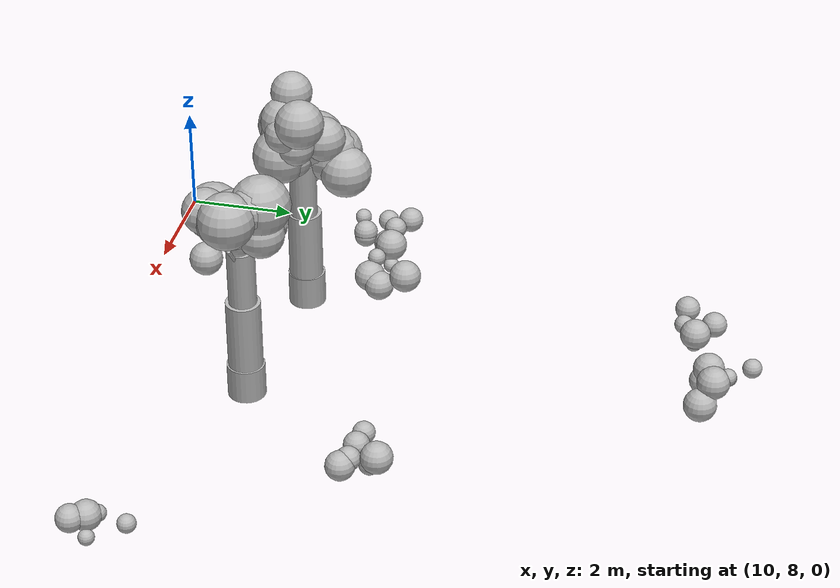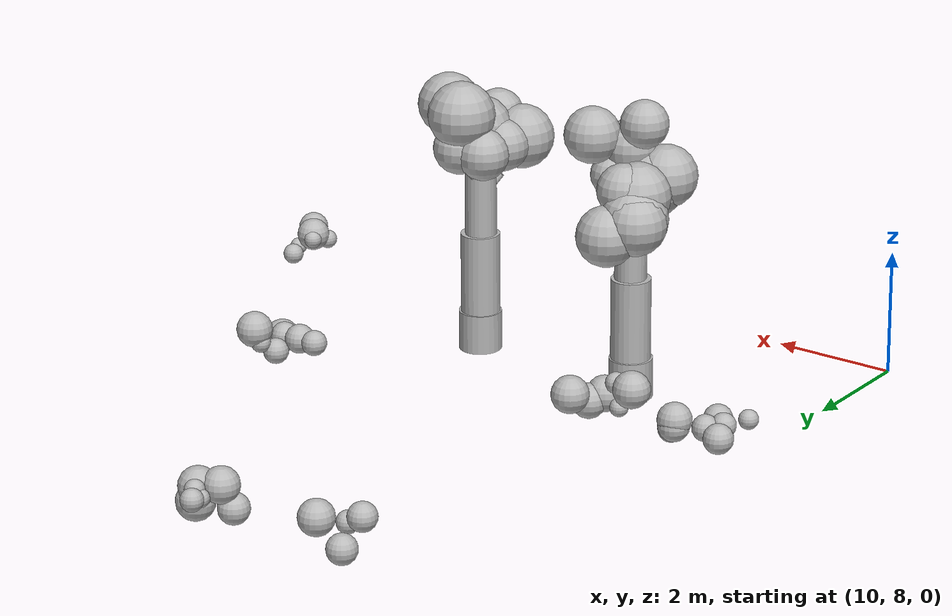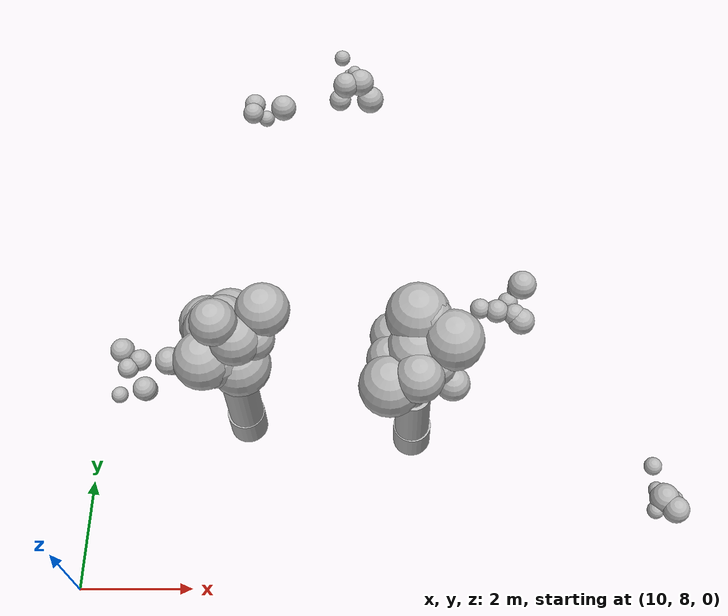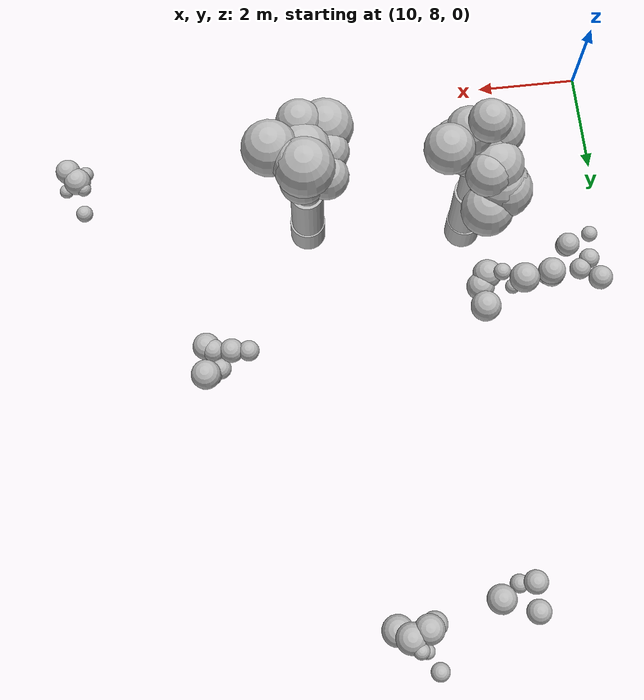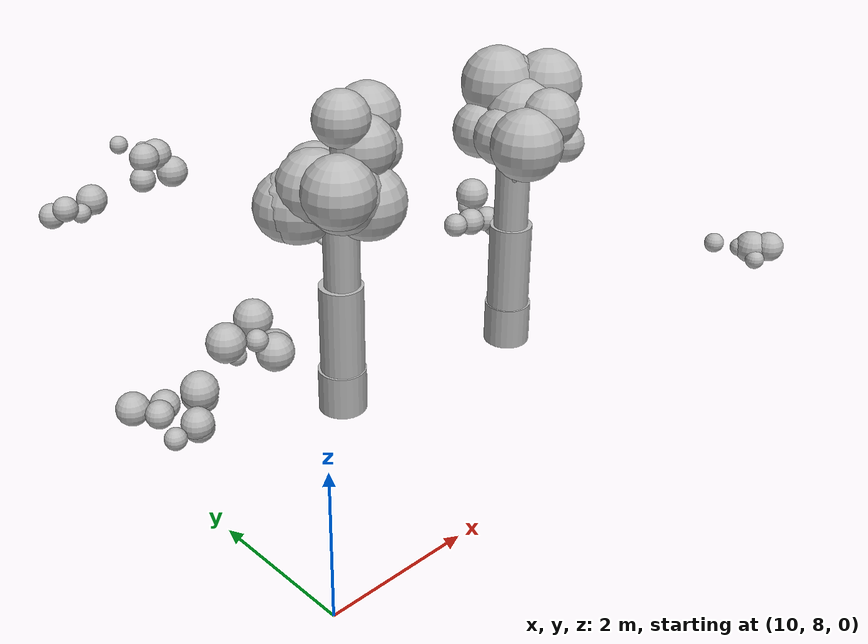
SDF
<sdf version="1.6">
 <world name="default">
  <model name="bush_16">
   <static>true</static>
   <pose>15.9041 10.8481 0 0 0 0</pose>
   <link name="trunk">
    <pose>0 0 1.5000 0 0 0</pose>
    <collision name="trunk_c">
     <geometry><cylinder><radius>0.3500</radius><length>3.0000</length></cylinder></geometry>
    </collision>
   </link>
   <link name="trunk_v0">
    <pose>-0.0012 -0.0003 0.3100 0 0 0</pose>
    <visual name="trunk_v0_v">
     <geometry><cylinder><radius>0.3448</radius><length>0.6448</length></cylinder></geometry>
     <material>
      <script>
       <uri>model://bushfire/materials/scripts</uri>
       <uri>model://bushfire/materials/textures</uri>
       <name>Bushfire/CharBark</name>
      </script>
     </material>
    </visual>
   </link>
   <link name="trunk_v1">
    <pose>-0.0083 -0.0020 1.2700 0 0 0</pose>
    <visual name="trunk_v1_v">
     <geometry><cylinder><radius>0.3150</radius><length>1.3520</length></cylinder></geometry>
     <material>
      <script>
       <uri>model://bushfire/materials/scripts</uri>
       <uri>model://bushfire/materials/textures</uri>
       <name>Bushfire/BarkStringy</name>
      </script>
     </material>
    </visual>
   </link>
   <link name="trunk_v2">
    <pose>-0.0209 -0.0050 2.4600 0 0 0</pose>
    <visual name="trunk_v2_v">
     <geometry><cylinder><radius>0.2520</radius><length>1.1232</length></cylinder></geometry>
     <material>
      <script>
       <uri>model://bushfire/materials/scripts</uri>
       <uri>model://bushfire/materials/textures</uri>
       <name>Bushfire/BarkStringy</name>
      </script>
     </material>
    </visual>
   </link>
   <link name="branch0">
    <pose>-0.1249 -0.1273 2.6929 0 0.6767 3.9365</pose>
    <visual name="branch0_v">
     <geometry><cylinder><radius>0.0453</radius><length>0.5696</length></cylinder></geometry>
     <material>
      <script>
       <uri>model://bushfire/materials/scripts</uri>
       <uri>model://bushfire/materials/textures</uri>
       <name>Bushfire/BarkStringy</name>
      </script>
     </material>
    </visual>
   </link>
   <link name="branch1">
    <pose>0.1879 -0.0394 2.9289 0 0.5676 6.0764</pose>
    <visual name="branch1_v">
     <geometry><cylinder><radius>0.0314</radius><length>0.7142</length></cylinder></geometry>
     <material>
      <script>
       <uri>model://bushfire/materials/scripts</uri>
       <uri>model://bushfire/materials/textures</uri>
       <name>Bushfire/BarkStringy</name>
      </script>
     </material>
    </visual>
   </link>
   <link name="branch2">
    <pose>-0.0336 0.2528 2.9792 0 0.8549 7.9863</pose>
    <visual name="branch2_v">
     <geometry><cylinder><radius>0.0408</radius><length>0.6761</length></cylinder></geometry>
     <material>
      <script>
       <uri>model://bushfire/materials/scripts</uri>
       <uri>model://bushfire/materials/textures</uri>
       <name>Bushfire/BarkStringy</name>
      </script>
     </material>
    </visual>
   </link>
   <link name="foliage0">
    <pose>-0.4191 -0.5780 3.4915 0 0 0</pose>
    <visual name="foliage0_v">
     <geometry><sphere><radius>0.5127</radius></sphere></geometry>
     <material>
      <script>
       <uri>model://bushfire/materials/scripts</uri>
       <uri>model://bushfire/materials/textures</uri>
       <name>Bushfire/Foliage0</name>
      </script>
     </material>
    </visual>
   </link>
   <link name="foliage1">
    <pose>0.3224 -0.3205 3.6843 0 0 0</pose>
    <visual name="foliage1_v">
     <geometry><sphere><radius>0.3221</radius></sphere></geometry>
     <material>
      <script>
       <uri>model://bushfire/materials/scripts</uri>
       <uri>model://bushfire/materials/textures</uri>
       <name>Bushfire/Foliage2</name>
      </script>
     </material>
    </visual>
   </link>
   <link name="foliage2">
    <pose>0.0349 0.4158 4.0235 0 0 0</pose>
    <visual name="foliage2_v">
     <geometry><sphere><radius>0.5341</radius></sphere></geometry>
     <material>
      <script>
       <uri>model://bushfire/materials/scripts</uri>
       <uri>model://bushfire/materials/textures</uri>
       <name>Bushfire/Foliage0</name>
      </script>
     </material>
    </visual>
   </link>
   <link name="foliage3">
    <pose>0.1288 0.1242 3.7370 0 0 0</pose>
    <visual name="foliage3_v">
     <geometry><sphere><radius>0.2526</radius></sphere></geometry>
     <material>
      <script>
       <uri>model://bushfire/materials/scripts</uri>
       <uri>model://bushfire/materials/textures</uri>
       <name>Bushfire/Foliage2</name>
      </script>
     </material>
    </visual>
   </link>
   <link name="foliage4">
    <pose>0.5929 -0.0247 3.9893 0 0 0</pose>
    <visual name="foliage4_v">
     <geometry><sphere><radius>0.5007</radius></sphere></geometry>
     <material>
      <script>
       <uri>model://bushfire/materials/scripts</uri>
       <uri>model://bushfire/materials/textures</uri>
       <name>Bushfire/Foliage1</name>
      </script>
     </material>
    </visual>
   </link>
   <link name="foliage5">
    <pose>-0.3402 0.3605 3.4294 0 0 0</pose>
    <visual name="foliage5_v">
     <geometry><sphere><radius>0.4108</radius></sphere></geometry>
     <material>
      <script>
       <uri>model://bushfire/materials/scripts</uri>
       <uri>model://bushfire/materials/textures</uri>
       <name>Bushfire/Foliage1</name>
      </script>
     </material>
    </visual>
   </link>
   <link name="foliage6">
    <pose>0.0393 -0.5753 3.7708 0 0 0</pose>
    <visual name="foliage6_v">
     <geometry><sphere><radius>0.4127</radius></sphere></geometry>
     <material>
      <script>
       <uri>model://bushfire/materials/scripts</uri>
       <uri>model://bushfire/materials/textures</uri>
       <name>Bushfire/Foliage1</name>
      </script>
     </material>
    </visual>
   </link>
   <link name="foliage7">
    <pose>0.6068 -0.4082 3.1958 0 0 0</pose>
    <visual name="foliage7_v">
     <geometry><sphere><radius>0.2864</radius></sphere></geometry>
     <material>
      <script>
       <uri>model://bushfire/materials/scripts</uri>
       <uri>model://bushfire/materials/textures</uri>
       <name>Bushfire/Foliage1</name>
      </script>
     </material>
    </visual>
   </link>
   <link name="foliage8">
    <pose>0.1576 0.3389 4.0370 0 0 0</pose>
    <visual name="foliage8_v">
     <geometry><sphere><radius>0.4394</radius></sphere></geometry>
     <material>
      <script>
       <uri>model://bushfire/materials/scripts</uri>
       <uri>model://bushfire/materials/textures</uri>
       <name>Bushfire/Foliage0</name>
      </script>
     </material>
    </visual>
   </link>
   <link name="foliage9">
    <pose>-0.3943 -0.1019 3.4698 0 0 0</pose>
    <visual name="foliage9_v">
     <geometry><sphere><radius>0.4125</radius></sphere></geometry>
     <material>
      <script>
       <uri>model://bushfire/materials/scripts</uri>
       <uri>model://bushfire/materials/textures</uri>
       <name>Bushfire/Foliage0</name>
      </script>
     </material>
    </visual>
   </link>
   <link name="foliage10">
    <pose>0.0330 -0.0588 3.6811 0 0 0</pose>
    <visual name="foliage10_v">
     <geometry><sphere><radius>0.5246</radius></sphere></geometry>
     <material>
      <script>
       <uri>model://bushfire/materials/scripts</uri>
       <uri>model://bushfire/materials/textures</uri>
       <name>Bushfire/Foliage2</name>
      </script>
     </material>
    </visual>
   </link>
   <link name="foliage11">
    <pose>0.0771 0.4121 3.4742 0 0 0</pose>
    <visual name="foliage11_v">
     <geometry><sphere><radius>0.4202</radius></sphere></geometry>
     <material>
      <script>
       <uri>model://bushfire/materials/scripts</uri>
       <uri>model://bushfire/materials/textures</uri>
       <name>Bushfire/Foliage1</name>
      </script>
     </material>
    </visual>
   </link>
   <link name="foliage12">
    <pose>0.0206 -0.0276 3.2971 0 0 0</pose>
    <visual name="foliage12_v">
     <geometry><sphere><radius>0.3258</radius></sphere></geometry>
     <material>
      <script>
       <uri>model://bushfire/materials/scripts</uri>
       <uri>model://bushfire/materials/textures</uri>
       <name>Bushfire/Foliage2</name>
      </script>
     </material>
    </visual>
   </link>
  </model>
  <model name="bush_33">
   <static>true</static>
   <pose>12.8076 11.1305 0 0 0 0</pose>
   <link name="trunk">
    <pose>0 0 1.5000 0 0 0</pose>
    <collision name="trunk_c">
     <geometry><cylinder><radius>0.3500</radius><length>3.0000</length></cylinder></geometry>
    </collision>
   </link>
   <link name="trunk_v0">
    <pose>0.0016 -0.0007 0.3100 0 0 0</pose>
    <visual name="trunk_v0_v">
     <geometry><cylinder><radius>0.3448</radius><length>0.6448</length></cylinder></geometry>
     <material>
      <script>
       <uri>model://bushfire/materials/scripts</uri>
       <uri>model://bushfire/materials/textures</uri>
       <name>Bushfire/CharBark</name>
      </script>
     </material>
    </visual>
   </link>
   <link name="trunk_v1">
    <pose>0.0116 -0.0050 1.2700 0 0 0</pose>
    <visual name="trunk_v1_v">
     <geometry><cylinder><radius>0.3150</radius><length>1.3520</length></cylinder></geometry>
     <material>
      <script>
       <uri>model://bushfire/materials/scripts</uri>
       <uri>model://bushfire/materials/textures</uri>
       <name>Bushfire/BarkSmooth</name>
      </script>
     </material>
    </visual>
   </link>
   <link name="trunk_v2">
    <pose>0.0293 -0.0125 2.4600 0 0 0</pose>
    <visual name="trunk_v2_v">
     <geometry><cylinder><radius>0.2520</radius><length>1.1232</length></cylinder></geometry>
     <material>
      <script>
       <uri>model://bushfire/materials/scripts</uri>
       <uri>model://bushfire/materials/textures</uri>
       <name>Bushfire/BarkSmooth</name>
      </script>
     </material>
    </visual>
   </link>
   <link name="branch0">
    <pose>0.2122 -0.0411 2.9763 0 0.6023 -0.1913</pose>
    <visual name="branch0_v">
     <geometry><cylinder><radius>0.0308</radius><length>0.7629</length></cylinder></geometry>
     <material>
      <script>
       <uri>model://bushfire/materials/scripts</uri>
       <uri>model://bushfire/materials/textures</uri>
       <name>Bushfire/BarkSmooth</name>
      </script>
     </material>
    </visual>
   </link>
   <link name="branch1">
    <pose>-0.2166 0.2785 2.6711 0 0.9761 2.2318</pose>
    <visual name="branch1_v">
     <geometry><cylinder><radius>0.0422</radius><length>0.8520</length></cylinder></geometry>
     <material>
      <script>
       <uri>model://bushfire/materials/scripts</uri>
       <uri>model://bushfire/materials/textures</uri>
       <name>Bushfire/BarkSmooth</name>
      </script>
     </material>
    </visual>
   </link>
   <link name="branch2">
    <pose>-0.0716 -0.2456 3.1943 0 0.6297 4.4289</pose>
    <visual name="branch2_v">
     <geometry><cylinder><radius>0.0375</radius><length>0.8687</length></cylinder></geometry>
     <material>
      <script>
       <uri>model://bushfire/materials/scripts</uri>
       <uri>model://bushfire/materials/textures</uri>
       <name>Bushfire/BarkSmooth</name>
      </script>
     </material>
    </visual>
   </link>
   <link name="foliage0">
    <pose>0.6467 0.1362 4.1906 0 0 0</pose>
    <visual name="foliage0_v">
     <geometry><sphere><radius>0.4447</radius></sphere></geometry>
     <material>
      <script>
       <uri>model://bushfire/materials/scripts</uri>
       <uri>model://bushfire/materials/textures</uri>
       <name>Bushfire/Foliage0</name>
      </script>
     </material>
    </visual>
   </link>
   <link name="foliage1">
    <pose>-0.0606 0.7836 2.8864 0 0 0</pose>
    <visual name="foliage1_v">
     <geometry><sphere><radius>0.4763</radius></sphere></geometry>
     <material>
      <script>
       <uri>model://bushfire/materials/scripts</uri>
       <uri>model://bushfire/materials/textures</uri>
       <name>Bushfire/Foliage2</name>
      </script>
     </material>
    </visual>
   </link>
   <link name="foliage2">
    <pose>0.0535 -0.2976 3.9201 0 0 0</pose>
    <visual name="foliage2_v">
     <geometry><sphere><radius>0.2650</radius></sphere></geometry>
     <material>
      <script>
       <uri>model://bushfire/materials/scripts</uri>
       <uri>model://bushfire/materials/textures</uri>
       <name>Bushfire/Foliage0</name>
      </script>
     </material>
    </visual>
   </link>
   <link name="foliage3">
    <pose>0.3851 -0.0272 3.5577 0 0 0</pose>
    <visual name="foliage3_v">
     <geometry><sphere><radius>0.3434</radius></sphere></geometry>
     <material>
      <script>
       <uri>model://bushfire/materials/scripts</uri>
       <uri>model://bushfire/materials/textures</uri>
       <name>Bushfire/Foliage2</name>
      </script>
     </material>
    </visual>
   </link>
   <link name="foliage4">
    <pose>-0.0837 0.3548 3.5019 0 0 0</pose>
    <visual name="foliage4_v">
     <geometry><sphere><radius>0.4219</radius></sphere></geometry>
     <material>
      <script>
       <uri>model://bushfire/materials/scripts</uri>
       <uri>model://bushfire/materials/textures</uri>
       <name>Bushfire/Foliage2</name>
      </script>
     </material>
    </visual>
   </link>
   <link name="foliage5">
    <pose>-0.1565 -0.2932 3.4358 0 0 0</pose>
    <visual name="foliage5_v">
     <geometry><sphere><radius>0.5301</radius></sphere></geometry>
     <material>
      <script>
       <uri>model://bushfire/materials/scripts</uri>
       <uri>model://bushfire/materials/textures</uri>
       <name>Bushfire/Foliage0</name>
      </script>
     </material>
    </visual>
   </link>
   <link name="foliage6">
    <pose>0.4970 -0.2114 3.8627 0 0 0</pose>
    <visual name="foliage6_v">
     <geometry><sphere><radius>0.3421</radius></sphere></geometry>
     <material>
      <script>
       <uri>model://bushfire/materials/scripts</uri>
       <uri>model://bushfire/materials/textures</uri>
       <name>Bushfire/Foliage1</name>
      </script>
     </material>
    </visual>
   </link>
   <link name="foliage7">
    <pose>-0.2319 0.1926 3.4071 0 0 0</pose>
    <visual name="foliage7_v">
     <geometry><sphere><radius>0.5192</radius></sphere></geometry>
     <material>
      <script>
       <uri>model://bushfire/materials/scripts</uri>
       <uri>model://bushfire/materials/textures</uri>
       <name>Bushfire/Foliage2</name>
      </script>
     </material>
    </visual>
   </link>
   <link name="foliage8">
    <pose>0.2150 -0.2684 3.9786 0 0 0</pose>
    <visual name="foliage8_v">
     <geometry><sphere><radius>0.4330</radius></sphere></geometry>
     <material>
      <script>
       <uri>model://bushfire/materials/scripts</uri>
       <uri>model://bushfire/materials/textures</uri>
       <name>Bushfire/Foliage2</name>
      </script>
     </material>
    </visual>
   </link>
   <link name="foliage9">
    <pose>0.2162 -0.3615 3.2357 0 0 0</pose>
    <visual name="foliage9_v">
     <geometry><sphere><radius>0.5160</radius></sphere></geometry>
     <material>
      <script>
       <uri>model://bushfire/materials/scripts</uri>
       <uri>model://bushfire/materials/textures</uri>
       <name>Bushfire/Foliage1</name>
      </script>
     </material>
    </visual>
   </link>
   <link name="foliage10">
    <pose>-0.4046 0.5132 3.0728 0 0 0</pose>
    <visual name="foliage10_v">
     <geometry><sphere><radius>0.4936</radius></sphere></geometry>
     <material>
      <script>
       <uri>model://bushfire/materials/scripts</uri>
       <uri>model://bushfire/materials/textures</uri>
       <name>Bushfire/Foliage1</name>
      </script>
     </material>
    </visual>
   </link>
   <link name="foliage11">
    <pose>-0.0805 -0.2034 4.4099 0 0 0</pose>
    <visual name="foliage11_v">
     <geometry><sphere><radius>0.3801</radius></sphere></geometry>
     <material>
      <script>
       <uri>model://bushfire/materials/scripts</uri>
       <uri>model://bushfire/materials/textures</uri>
       <name>Bushfire/Foliage1</name>
      </script>
     </material>
    </visual>
   </link>
   <link name="foliage12">
    <pose>0.1923 -0.1197 3.1760 0 0 0</pose>
    <visual name="foliage12_v">
     <geometry><sphere><radius>0.3317</radius></sphere></geometry>
     <material>
      <script>
       <uri>model://bushfire/materials/scripts</uri>
       <uri>model://bushfire/materials/textures</uri>
       <name>Bushfire/Foliage0</name>
      </script>
     </material>
    </visual>
   </link>
   <link name="foliage13">
    <pose>-0.3187 0.4293 3.0980 0 0 0</pose>
    <visual name="foliage13_v">
     <geometry><sphere><radius>0.5395</radius></sphere></geometry>
     <material>
      <script>
       <uri>model://bushfire/materials/scripts</uri>
       <uri>model://bushfire/materials/textures</uri>
       <name>Bushfire/Foliage0</name>
      </script>
     </material>
    </visual>
   </link>
   <link name="foliage14">
    <pose>-0.3366 -0.4277 3.5621 0 0 0</pose>
    <visual name="foliage14_v">
     <geometry><sphere><radius>0.4949</radius></sphere></geometry>
     <material>
      <script>
       <uri>model://bushfire/materials/scripts</uri>
       <uri>model://bushfire/materials/textures</uri>
       <name>Bushfire/Foliage0</name>
      </script>
     </material>
    </visual>
   </link>
   <link name="foliage15">
    <pose>-0.0672 -0.1736 3.2710 0 0 0</pose>
    <visual name="foliage15_v">
     <geometry><sphere><radius>0.3172</radius></sphere></geometry>
     <material>
      <script>
       <uri>model://bushfire/materials/scripts</uri>
       <uri>model://bushfire/materials/textures</uri>
       <name>Bushfire/Foliage0</name>
      </script>
     </material>
    </visual>
   </link>
  </model>
  <model name="scrub">
   <static>true</static>
   <link name="scrub13_0">
    <pose>14.7519 19.2999 0.8821 0 0 0</pose>
    <visual name="scrub13_0_v">
     <geometry><sphere><radius>0.1552</radius></sphere></geometry>
     <material>
      <script>
       <uri>model://bushfire/materials/scripts</uri>
       <uri>model://bushfire/materials/textures</uri>
       <name>Bushfire/Foliage0</name>
      </script>
     </material>
    </visual>
   </link>
   <link name="scrub13_1">
    <pose>14.8884 19.0658 0.8218 0 0 0</pose>
    <visual name="scrub13_1_v">
     <geometry><sphere><radius>0.2961</radius></sphere></geometry>
     <material>
      <script>
       <uri>model://bushfire/materials/scripts</uri>
       <uri>model://bushfire/materials/textures</uri>
       <name>Bushfire/Foliage2</name>
      </script>
     </material>
    </visual>
   </link>
   <link name="scrub13_2">
    <pose>14.5600 18.9433 0.8739 0 0 0</pose>
    <visual name="scrub13_2_v">
     <geometry><sphere><radius>0.2804</radius></sphere></geometry>
     <material>
      <script>
       <uri>model://bushfire/materials/scripts</uri>
       <uri>model://bushfire/materials/textures</uri>
       <name>Bushfire/Foliage1</name>
      </script>
     </material>
    </visual>
   </link>
   <link name="scrub13_3">
    <pose>15.0992 18.8828 0.4626 0 0 0</pose>
    <visual name="scrub13_3_v">
     <geometry><sphere><radius>0.2990</radius></sphere></geometry>
     <material>
      <script>
       <uri>model://bushfire/materials/scripts</uri>
       <uri>model://bushfire/materials/textures</uri>
       <name>Bushfire/Foliage1</name>
      </script>
     </material>
    </visual>
   </link>
   <link name="scrub13_4">
    <pose>14.4725 19.6923 0.9381 0 0 0</pose>
    <visual name="scrub13_4_v">
     <geometry><sphere><radius>0.1735</radius></sphere></geometry>
     <material>
      <script>
       <uri>model://bushfire/materials/scripts</uri>
       <uri>model://bushfire/materials/textures</uri>
       <name>Bushfire/Foliage1</name>
      </script>
     </material>
    </visual>
   </link>
   <link name="scrub13_5">
    <pose>14.4252 18.8412 0.5039 0 0 0</pose>
    <visual name="scrub13_5_v">
     <geometry><sphere><radius>0.2425</radius></sphere></geometry>
     <material>
      <script>
       <uri>model://bushfire/materials/scripts</uri>
       <uri>model://bushfire/materials/textures</uri>
       <name>Bushfire/Foliage0</name>
      </script>
     </material>
    </visual>
   </link>
   <link name="scrub13_6">
    <pose>14.6429 19.3141 0.7820 0 0 0</pose>
    <visual name="scrub13_6_v">
     <geometry><sphere><radius>0.1426</radius></sphere></geometry>
     <material>
      <script>
       <uri>model://bushfire/materials/scripts</uri>
       <uri>model://bushfire/materials/textures</uri>
       <name>Bushfire/Foliage1</name>
      </script>
     </material>
    </visual>
   </link>
   <link name="scrub19_0">
    <pose>10.8031 11.7716 0.2421 0 0 0</pose>
    <visual name="scrub19_0_v">
     <geometry><sphere><radius>0.2172</radius></sphere></geometry>
     <material>
      <script>
       <uri>model://bushfire/materials/scripts</uri>
       <uri>model://bushfire/materials/textures</uri>
       <name>Bushfire/Foliage0</name>
      </script>
     </material>
    </visual>
   </link>
   <link name="scrub19_1">
    <pose>11.2579 12.3290 0.2273 0 0 0</pose>
    <visual name="scrub19_1_v">
     <geometry><sphere><radius>0.2107</radius></sphere></geometry>
     <material>
      <script>
       <uri>model://bushfire/materials/scripts</uri>
       <uri>model://bushfire/materials/textures</uri>
       <name>Bushfire/Foliage0</name>
      </script>
     </material>
    </visual>
   </link>
   <link name="scrub19_2">
    <pose>10.6428 12.3370 0.3948 0 0 0</pose>
    <visual name="scrub19_2_v">
     <geometry><sphere><radius>0.2106</radius></sphere></geometry>
     <material>
      <script>
       <uri>model://bushfire/materials/scripts</uri>
       <uri>model://bushfire/materials/textures</uri>
       <name>Bushfire/Foliage2</name>
      </script>
     </material>
    </visual>
   </link>
   <link name="scrub19_3">
    <pose>11.1971 12.3562 0.2994 0 0 0</pose>
    <visual name="scrub19_3_v">
     <geometry><sphere><radius>0.2482</radius></sphere></geometry>
     <material>
      <script>
       <uri>model://bushfire/materials/scripts</uri>
       <uri>model://bushfire/materials/textures</uri>
       <name>Bushfire/Foliage1</name>
      </script>
     </material>
    </visual>
   </link>
   <link name="scrub19_4">
    <pose>10.3324 11.6126 0.3571 0 0 0</pose>
    <visual name="scrub19_4_v">
     <geometry><sphere><radius>0.1571</radius></sphere></geometry>
     <material>
      <script>
       <uri>model://bushfire/materials/scripts</uri>
       <uri>model://bushfire/materials/textures</uri>
       <name>Bushfire/Foliage2</name>
      </script>
     </material>
    </visual>
   </link>
   <link name="scrub19_5">
    <pose>10.4398 12.1510 0.4217 0 0 0</pose>
    <visual name="scrub19_5_v">
     <geometry><sphere><radius>0.1987</radius></sphere></geometry>
     <material>
      <script>
       <uri>model://bushfire/materials/scripts</uri>
       <uri>model://bushfire/materials/textures</uri>
       <name>Bushfire/Foliage1</name>
      </script>
     </material>
    </visual>
   </link>
   <link name="scrub19_6">
    <pose>10.2712 12.5586 0.3869 0 0 0</pose>
    <visual name="scrub19_6_v">
     <geometry><sphere><radius>0.2368</radius></sphere></geometry>
     <material>
      <script>
       <uri>model://bushfire/materials/scripts</uri>
       <uri>model://bushfire/materials/textures</uri>
       <name>Bushfire/Foliage0</name>
      </script>
     </material>
    </visual>
   </link>
   <link name="scrub19_7">
    <pose>11.2046 12.3240 0.3874 0 0 0</pose>
    <visual name="scrub19_7_v">
     <geometry><sphere><radius>0.2726</radius></sphere></geometry>
     <material>
      <script>
       <uri>model://bushfire/materials/scripts</uri>
       <uri>model://bushfire/materials/textures</uri>
       <name>Bushfire/Foliage0</name>
      </script>
     </material>
    </visual>
   </link>
   <link name="scrub19_8">
    <pose>10.7809 11.7674 0.3125 0 0 0</pose>
    <visual name="scrub19_8_v">
     <geometry><sphere><radius>0.2301</radius></sphere></geometry>
     <material>
      <script>
       <uri>model://bushfire/materials/scripts</uri>
       <uri>model://bushfire/materials/textures</uri>
       <name>Bushfire/Foliage1</name>
      </script>
     </material>
    </visual>
   </link>
   <link name="scrub24_0">
    <pose>17.8756 13.6157 0.3749 0 0 0</pose>
    <visual name="scrub24_0_v">
     <geometry><sphere><radius>0.2052</radius></sphere></geometry>
     <material>
      <script>
       <uri>model://bushfire/materials/scripts</uri>
       <uri>model://bushfire/materials/textures</uri>
       <name>Bushfire/Foliage2</name>
      </script>
     </material>
    </visual>
   </link>
   <link name="scrub24_1">
    <pose>17.3009 13.3682 0.5589 0 0 0</pose>
    <visual name="scrub24_1_v">
     <geometry><sphere><radius>0.2024</radius></sphere></geometry>
     <material>
      <script>
       <uri>model://bushfire/materials/scripts</uri>
       <uri>model://bushfire/materials/textures</uri>
       <name>Bushfire/Foliage2</name>
      </script>
     </material>
    </visual>
   </link>
   <link name="scrub24_2">
    <pose>18.1450 13.8035 0.7405 0 0 0</pose>
    <visual name="scrub24_2_v">
     <geometry><sphere><radius>0.2861</radius></sphere></geometry>
     <material>
      <script>
       <uri>model://bushfire/materials/scripts</uri>
       <uri>model://bushfire/materials/textures</uri>
       <name>Bushfire/Foliage1</name>
      </script>
     </material>
    </visual>
   </link>
   <link name="scrub24_3">
    <pose>17.9800 13.2653 0.4987 0 0 0</pose>
    <visual name="scrub24_3_v">
     <geometry><sphere><radius>0.2197</radius></sphere></geometry>
     <material>
      <script>
       <uri>model://bushfire/materials/scripts</uri>
       <uri>model://bushfire/materials/textures</uri>
       <name>Bushfire/Foliage1</name>
      </script>
     </material>
    </visual>
   </link>
   <link name="scrub24_4">
    <pose>18.0202 13.8131 0.5455 0 0 0</pose>
    <visual name="scrub24_4_v">
     <geometry><sphere><radius>0.1575</radius></sphere></geometry>
     <material>
      <script>
       <uri>model://bushfire/materials/scripts</uri>
       <uri>model://bushfire/materials/textures</uri>
       <name>Bushfire/Foliage2</name>
      </script>
     </material>
    </visual>
   </link>
   <link name="scrub24_5">
    <pose>17.6295 13.3218 0.5413 0 0 0</pose>
    <visual name="scrub24_5_v">
     <geometry><sphere><radius>0.2344</radius></sphere></geometry>
     <material>
      <script>
       <uri>model://bushfire/materials/scripts</uri>
       <uri>model://bushfire/materials/textures</uri>
       <name>Bushfire/Foliage2</name>
      </script>
     </material>
    </visual>
   </link>
   <link name="scrub24_6">
    <pose>18.1169 13.1527 0.4307 0 0 0</pose>
    <visual name="scrub24_6_v">
     <geometry><sphere><radius>0.2657</radius></sphere></geometry>
     <material>
      <script>
       <uri>model://bushfire/materials/scripts</uri>
       <uri>model://bushfire/materials/textures</uri>
       <name>Bushfire/Foliage2</name>
      </script>
     </material>
    </visual>
   </link>
   <link name="scrub45_0">
    <pose>20.5891 9.2266 0.5564 0 0 0</pose>
    <visual name="scrub45_0_v">
     <geometry><sphere><radius>0.2438</radius></sphere></geometry>
     <material>
      <script>
       <uri>model://bushfire/materials/scripts</uri>
       <uri>model://bushfire/materials/textures</uri>
       <name>Bushfire/Foliage1</name>
      </script>
     </material>
    </visual>
   </link>
   <link name="scrub45_1">
    <pose>20.4185 9.4505 0.5262 0 0 0</pose>
    <visual name="scrub45_1_v">
     <geometry><sphere><radius>0.2674</radius></sphere></geometry>
     <material>
      <script>
       <uri>model://bushfire/materials/scripts</uri>
       <uri>model://bushfire/materials/textures</uri>
       <name>Bushfire/Foliage0</name>
      </script>
     </material>
    </visual>
   </link>
   <link name="scrub45_2">
    <pose>20.2605 9.2620 0.4153 0 0 0</pose>
    <visual name="scrub45_2_v">
     <geometry><sphere><radius>0.1550</radius></sphere></geometry>
     <material>
      <script>
       <uri>model://bushfire/materials/scripts</uri>
       <uri>model://bushfire/materials/textures</uri>
       <name>Bushfire/Foliage1</name>
      </script>
     </material>
    </visual>
   </link>
   <link name="scrub45_3">
    <pose>20.3283 10.1083 0.3949 0 0 0</pose>
    <visual name="scrub45_3_v">
     <geometry><sphere><radius>0.1658</radius></sphere></geometry>
     <material>
      <script>
       <uri>model://bushfire/materials/scripts</uri>
       <uri>model://bushfire/materials/textures</uri>
       <name>Bushfire/Foliage2</name>
      </script>
     </material>
    </visual>
   </link>
   <link name="scrub45_4">
    <pose>20.3035 9.6108 0.5049 0 0 0</pose>
    <visual name="scrub45_4_v">
     <geometry><sphere><radius>0.1490</radius></sphere></geometry>
     <material>
      <script>
       <uri>model://bushfire/materials/scripts</uri>
       <uri>model://bushfire/materials/textures</uri>
       <name>Bushfire/Foliage2</name>
      </script>
     </material>
    </visual>
   </link>
   <link name="scrub45_5">
    <pose>20.6807 9.5254 0.2806 0 0 0</pose>
    <visual name="scrub45_5_v">
     <geometry><sphere><radius>0.1412</radius></sphere></geometry>
     <material>
      <script>
       <uri>model://bushfire/materials/scripts</uri>
       <uri>model://bushfire/materials/textures</uri>
       <name>Bushfire/Foliage2</name>
      </script>
     </material>
    </visual>
   </link>
   <link name="scrub67_0">
    <pose>12.5208 18.3116 0.6791 0 0 0</pose>
    <visual name="scrub67_0_v">
     <geometry><sphere><radius>0.2263</radius></sphere></geometry>
     <material>
      <script>
       <uri>model://bushfire/materials/scripts</uri>
       <uri>model://bushfire/materials/textures</uri>
       <name>Bushfire/Foliage2</name>
      </script>
     </material>
    </visual>
   </link>
   <link name="scrub67_1">
    <pose>12.7999 18.2905 0.5172 0 0 0</pose>
    <visual name="scrub67_1_v">
     <geometry><sphere><radius>0.1757</radius></sphere></geometry>
     <material>
      <script>
       <uri>model://bushfire/materials/scripts</uri>
       <uri>model://bushfire/materials/textures</uri>
       <name>Bushfire/Foliage1</name>
      </script>
     </material>
    </visual>
   </link>
   <link name="scrub67_2">
    <pose>12.4958 18.8200 0.3775 0 0 0</pose>
    <visual name="scrub67_2_v">
     <geometry><sphere><radius>0.2338</radius></sphere></geometry>
     <material>
      <script>
       <uri>model://bushfire/materials/scripts</uri>
       <uri>model://bushfire/materials/textures</uri>
       <name>Bushfire/Foliage2</name>
      </script>
     </material>
    </visual>
   </link>
   <link name="scrub67_3">
    <pose>13.1663 18.5412 0.5842 0 0 0</pose>
    <visual name="scrub67_3_v">
     <geometry><sphere><radius>0.2783</radius></sphere></geometry>
     <material>
      <script>
       <uri>model://bushfire/materials/scripts</uri>
       <uri>model://bushfire/materials/textures</uri>
       <name>Bushfire/Foliage2</name>
      </script>
     </material>
    </visual>
   </link>
   <link name="scrub67_4">
    <pose>13.2372 18.5363 0.4402 0 0 0</pose>
    <visual name="scrub67_4_v">
     <geometry><sphere><radius>0.1537</radius></sphere></geometry>
     <material>
      <script>
       <uri>model://bushfire/materials/scripts</uri>
       <uri>model://bushfire/materials/textures</uri>
       <name>Bushfire/Foliage2</name>
      </script>
     </material>
    </visual>
   </link>
   <link name="scrub69_0">
    <pose>11.8445 12.5404 0.7972 0 0 0</pose>
    <visual name="scrub69_0_v">
     <geometry><sphere><radius>0.2940</radius></sphere></geometry>
     <material>
      <script>
       <uri>model://bushfire/materials/scripts</uri>
       <uri>model://bushfire/materials/textures</uri>
       <name>Bushfire/Foliage1</name>
      </script>
     </material>
    </visual>
   </link>
   <link name="scrub69_1">
    <pose>12.6572 13.0013 0.6827 0 0 0</pose>
    <visual name="scrub69_1_v">
     <geometry><sphere><radius>0.2975</radius></sphere></geometry>
     <material>
      <script>
       <uri>model://bushfire/materials/scripts</uri>
       <uri>model://bushfire/materials/textures</uri>
       <name>Bushfire/Foliage1</name>
      </script>
     </material>
    </visual>
   </link>
   <link name="scrub69_2">
    <pose>12.0416 12.5854 0.4755 0 0 0</pose>
    <visual name="scrub69_2_v">
     <geometry><sphere><radius>0.1471</radius></sphere></geometry>
     <material>
      <script>
       <uri>model://bushfire/materials/scripts</uri>
       <uri>model://bushfire/materials/textures</uri>
       <name>Bushfire/Foliage2</name>
      </script>
     </material>
    </visual>
   </link>
   <link name="scrub69_3">
    <pose>12.5075 12.2815 0.4881 0 0 0</pose>
    <visual name="scrub69_3_v">
     <geometry><sphere><radius>0.2884</radius></sphere></geometry>
     <material>
      <script>
       <uri>model://bushfire/materials/scripts</uri>
       <uri>model://bushfire/materials/textures</uri>
       <name>Bushfire/Foliage2</name>
      </script>
     </material>
    </visual>
   </link>
   <link name="scrub69_4">
    <pose>12.6579 12.4953 0.4047 0 0 0</pose>
    <visual name="scrub69_4_v">
     <geometry><sphere><radius>0.2773</radius></sphere></geometry>
     <material>
      <script>
       <uri>model://bushfire/materials/scripts</uri>
       <uri>model://bushfire/materials/textures</uri>
       <name>Bushfire/Foliage2</name>
      </script>
     </material>
    </visual>
   </link>
   <link name="scrub69_5">
    <pose>12.2520 12.3571 0.7505 0 0 0</pose>
    <visual name="scrub69_5_v">
     <geometry><sphere><radius>0.1687</radius></sphere></geometry>
     <material>
      <script>
       <uri>model://bushfire/materials/scripts</uri>
       <uri>model://bushfire/materials/textures</uri>
       <name>Bushfire/Foliage0</name>
      </script>
     </material>
    </visual>
   </link>
  </model>
 </world>
</sdf>
